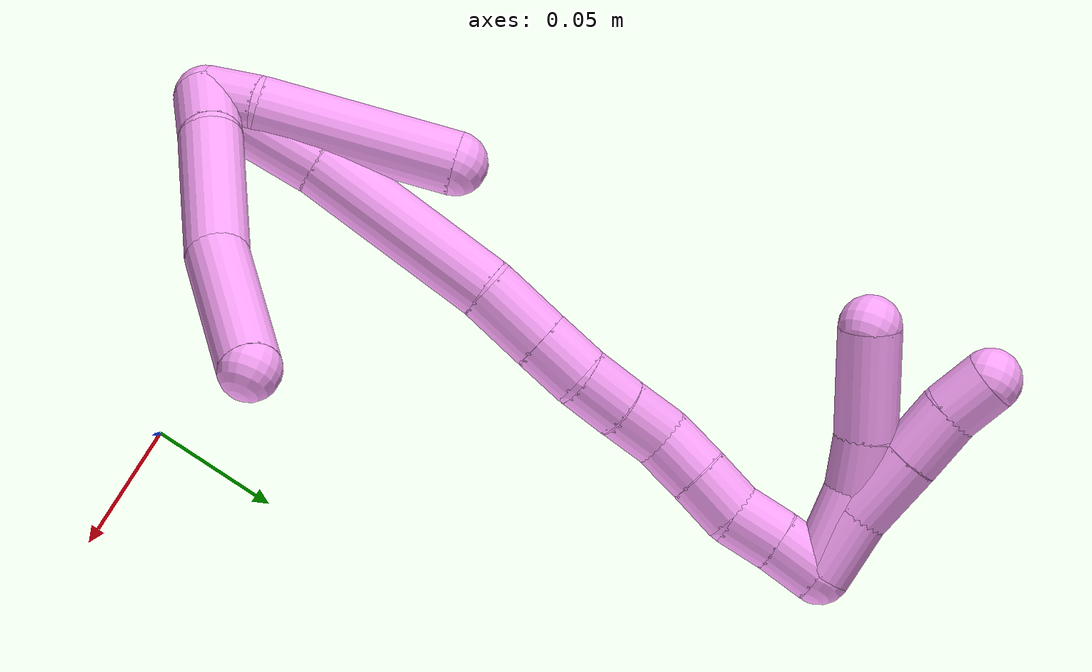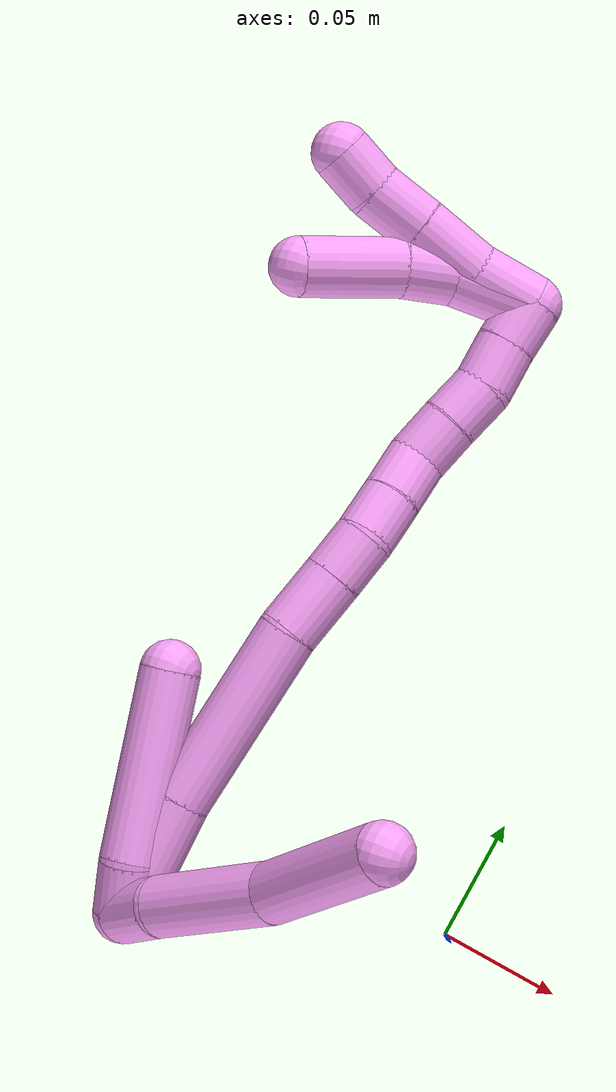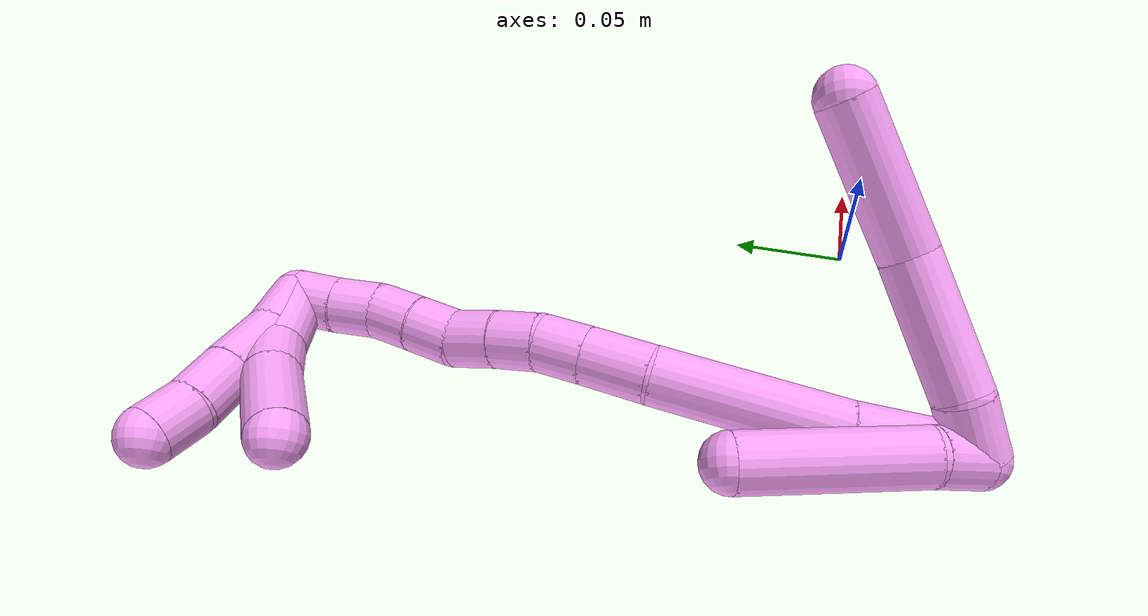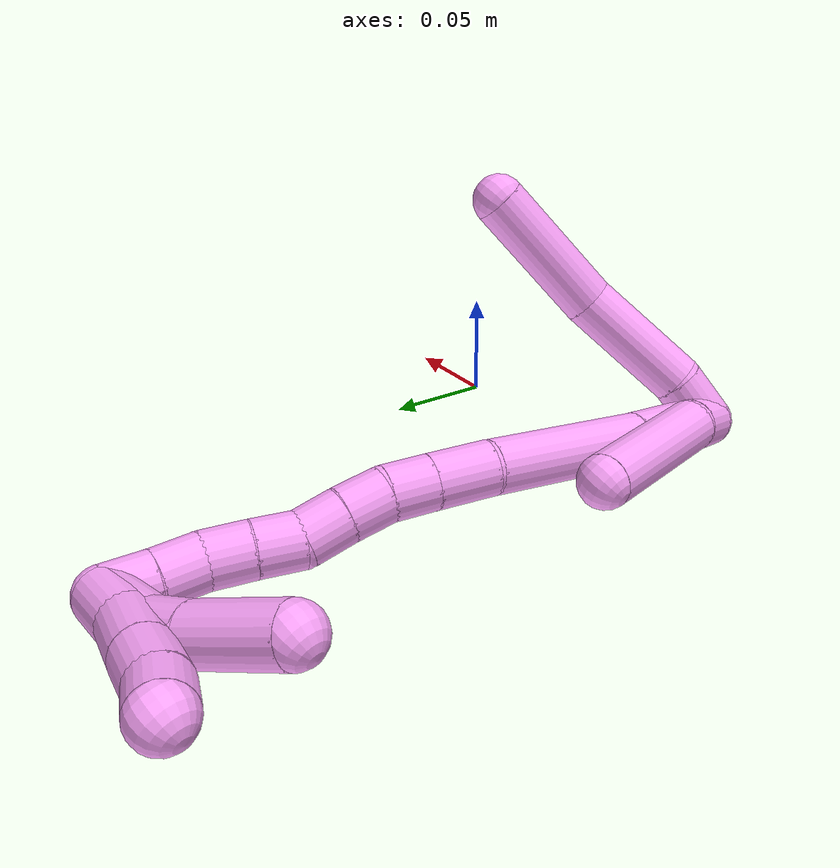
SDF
<sdf version="1.7">
 <world name="default">
  <model name="4">
   <static>0</static>
   <link name="4">
    <collision name="collision-cylinder-e_1_2_8">
     <pose>-0.007917 -1.7e-05 0.010125 0.001638 -0.663633 -0.000564</pose>
     <geometry><cylinder><radius>0.0125</radius><length>0.025707</length></cylinder></geometry>
     <surface>
      <friction><ode><mu>1.16</mu><mu2>1.16</mu2><slip1>0</slip1><slip2>0</slip2></ode></friction>
      <contact><ode><kp>1e+06</kp><kd>1</kd><max_vel>0</max_vel><min_depth>0.001</min_depth></ode></contact>
     </surface>
    </collision>
    <visual name="visual-cylinder-e_1_2_8">
     <pose>-0.007917 -1.7e-05 0.010125 0.001638 -0.663633 -0.000564</pose>
     <geometry><cylinder><radius>0.0125</radius><length>0.025707</length></cylinder></geometry>
     <material><ambient>1 0.65098 0.996078 1</ambient></material>
    </visual>
    <collision name="collision-cylinder-e_2_8_9">
     <pose>-0.029089 0.004193 0.045918 -0.163191 -0.471244 0.039261</pose>
     <geometry><cylinder><radius>0.0125</radius><length>0.058389</length></cylinder></geometry>
     <surface>
      <friction><ode><mu>1.16</mu><mu2>1.16</mu2><slip1>0</slip1><slip2>0</slip2></ode></friction>
      <contact><ode><kp>1e+06</kp><kd>1</kd><max_vel>0</max_vel><min_depth>0.001</min_depth></ode></contact>
     </surface>
    </collision>
    <visual name="visual-cylinder-e_2_8_9">
     <pose>-0.029089 0.004193 0.045918 -0.163191 -0.471244 0.039261</pose>
     <geometry><cylinder><radius>0.0125</radius><length>0.058389</length></cylinder></geometry>
     <material><ambient>1 0.65098 0.996078 1</ambient></material>
    </visual>
    <collision name="collision-cylinder-e_3_9_6">
     <pose>-0.063748 0.011972 0.096385 -0.142301 -0.707005 0.052586</pose>
     <geometry><cylinder><radius>0.0125</radius><length>0.065904</length></cylinder></geometry>
     <surface>
      <friction><ode><mu>1.16</mu><mu2>1.16</mu2><slip1>0</slip1><slip2>0</slip2></ode></friction>
      <contact><ode><kp>1e+06</kp><kd>1</kd><max_vel>0</max_vel><min_depth>0.001</min_depth></ode></contact>
     </surface>
    </collision>
    <visual name="visual-cylinder-e_3_9_6">
     <pose>-0.063748 0.011972 0.096385 -0.142301 -0.707005 0.052586</pose>
     <geometry><cylinder><radius>0.0125</radius><length>0.065904</length></cylinder></geometry>
     <material><ambient>1 0.65098 0.996078 1</ambient></material>
    </visual>
    <collision name="collision-cylinder-e_1_2_10">
     <pose>-0.008356 0.006869 -0.000714 -1.67433 -0.880086 0.962636</pose>
     <geometry><cylinder><radius>0.0125</radius><length>0.021681</length></cylinder></geometry>
     <surface>
      <friction><ode><mu>1.16</mu><mu2>1.16</mu2><slip1>0</slip1><slip2>0</slip2></ode></friction>
      <contact><ode><kp>1e+06</kp><kd>1</kd><max_vel>0</max_vel><min_depth>0.001</min_depth></ode></contact>
     </surface>
    </collision>
    <visual name="visual-cylinder-e_1_2_10">
     <pose>-0.008356 0.006869 -0.000714 -1.67433 -0.880086 0.962636</pose>
     <geometry><cylinder><radius>0.0125</radius><length>0.021681</length></cylinder></geometry>
     <material><ambient>1 0.65098 0.996078 1</ambient></material>
    </visual>
    <collision name="collision-cylinder-e_2_10_5">
     <pose>-0.040481 0.044679 -0.004775 -1.67858 -0.652257 0.720648</pose>
     <geometry><cylinder><radius>0.0125</radius><length>0.078319</length></cylinder></geometry>
     <surface>
      <friction><ode><mu>1.16</mu><mu2>1.16</mu2><slip1>0</slip1><slip2>0</slip2></ode></friction>
      <contact><ode><kp>1e+06</kp><kd>1</kd><max_vel>0</max_vel><min_depth>0.001</min_depth></ode></contact>
     </surface>
    </collision>
    <visual name="visual-cylinder-e_2_10_5">
     <pose>-0.040481 0.044679 -0.004775 -1.67858 -0.652257 0.720648</pose>
     <geometry><cylinder><radius>0.0125</radius><length>0.078319</length></cylinder></geometry>
     <material><ambient>1 0.65098 0.996078 1</ambient></material>
    </visual>
    <collision name="collision-cylinder-e_1_2_11">
     <pose>-0.014165 0.020598 0.004362 -1.36211 -0.592194 0.484733</pose>
     <geometry><cylinder><radius>0.0125</radius><length>0.050753</length></cylinder></geometry>
     <surface>
      <friction><ode><mu>1.16</mu><mu2>1.16</mu2><slip1>0</slip1><slip2>0</slip2></ode></friction>
      <contact><ode><kp>1e+06</kp><kd>1</kd><max_vel>0</max_vel><min_depth>0.001</min_depth></ode></contact>
     </surface>
    </collision>
    <visual name="visual-cylinder-e_1_2_11">
     <pose>-0.014165 0.020598 0.004362 -1.36211 -0.592194 0.484733</pose>
     <geometry><cylinder><radius>0.0125</radius><length>0.050753</length></cylinder></geometry>
     <material><ambient>1 0.65098 0.996078 1</ambient></material>
    </visual>
    <collision name="collision-cylinder-e_2_11_12">
     <pose>-0.048611 0.074156 0.019208 -1.26284 -0.530356 0.392099</pose>
     <geometry><cylinder><radius>0.0125</radius><length>0.080188</length></cylinder></geometry>
     <surface>
      <friction><ode><mu>1.16</mu><mu2>1.16</mu2><slip1>0</slip1><slip2>0</slip2></ode></friction>
      <contact><ode><kp>1e+06</kp><kd>1</kd><max_vel>0</max_vel><min_depth>0.001</min_depth></ode></contact>
     </surface>
    </collision>
    <visual name="visual-cylinder-e_2_11_12">
     <pose>-0.048611 0.074156 0.019208 -1.26284 -0.530356 0.392099</pose>
     <geometry><cylinder><radius>0.0125</radius><length>0.080188</length></cylinder></geometry>
     <material><ambient>1 0.65098 0.996078 1</ambient></material>
    </visual>
    <collision name="collision-cylinder-e_3_12_13">
     <pose>-0.074022 0.119498 0.034191 -1.22228 -0.371304 0.26167</pose>
     <geometry><cylinder><radius>0.0125</radius><length>0.028278</length></cylinder></geometry>
     <surface>
      <friction><ode><mu>1.16</mu><mu2>1.16</mu2><slip1>0</slip1><slip2>0</slip2></ode></friction>
      <contact><ode><kp>1e+06</kp><kd>1</kd><max_vel>0</max_vel><min_depth>0.001</min_depth></ode></contact>
     </surface>
    </collision>
    <visual name="visual-cylinder-e_3_12_13">
     <pose>-0.074022 0.119498 0.034191 -1.22228 -0.371304 0.26167</pose>
     <geometry><cylinder><radius>0.0125</radius><length>0.028278</length></cylinder></geometry>
     <material><ambient>1 0.65098 0.996078 1</ambient></material>
    </visual>
    <collision name="collision-cylinder-e_4_13_14">
     <pose>-0.082923 0.141029 0.041848 -1.2384 -0.371575 0.266328</pose>
     <geometry><cylinder><radius>0.0125</radius><length>0.020772</length></cylinder></geometry>
     <surface>
      <friction><ode><mu>1.16</mu><mu2>1.16</mu2><slip1>0</slip1><slip2>0</slip2></ode></friction>
      <contact><ode><kp>1e+06</kp><kd>1</kd><max_vel>0</max_vel><min_depth>0.001</min_depth></ode></contact>
     </surface>
    </collision>
    <visual name="visual-cylinder-e_4_13_14">
     <pose>-0.082923 0.141029 0.041848 -1.2384 -0.371575 0.266328</pose>
     <geometry><cylinder><radius>0.0125</radius><length>0.020772</length></cylinder></geometry>
     <material><ambient>1 0.65098 0.996078 1</ambient></material>
    </visual>
    <collision name="collision-cylinder-e_5_14_15">
     <pose>-0.089191 0.159747 0.046514 -1.41445 -0.252221 0.215886</pose>
     <geometry><cylinder><radius>0.0125</radius><length>0.020009</length></cylinder></geometry>
     <surface>
      <friction><ode><mu>1.16</mu><mu2>1.16</mu2><slip1>0</slip1><slip2>0</slip2></ode></friction>
      <contact><ode><kp>1e+06</kp><kd>1</kd><max_vel>0</max_vel><min_depth>0.001</min_depth></ode></contact>
     </surface>
    </collision>
    <visual name="visual-cylinder-e_5_14_15">
     <pose>-0.089191 0.159747 0.046514 -1.41445 -0.252221 0.215886</pose>
     <geometry><cylinder><radius>0.0125</radius><length>0.020009</length></cylinder></geometry>
     <material><ambient>1 0.65098 0.996078 1</ambient></material>
    </visual>
    <collision name="collision-cylinder-e_6_15_16">
     <pose>-0.093791 0.179032 0.049116 -1.45871 -0.211916 0.189544</pose>
     <geometry><cylinder><radius>0.0125</radius><length>0.02</length></cylinder></geometry>
     <surface>
      <friction><ode><mu>1.16</mu><mu2>1.16</mu2><slip1>0</slip1><slip2>0</slip2></ode></friction>
      <contact><ode><kp>1e+06</kp><kd>1</kd><max_vel>0</max_vel><min_depth>0.001</min_depth></ode></contact>
     </surface>
    </collision>
    <visual name="visual-cylinder-e_6_15_16">
     <pose>-0.093791 0.179032 0.049116 -1.45871 -0.211916 0.189544</pose>
     <geometry><cylinder><radius>0.0125</radius><length>0.02</length></cylinder></geometry>
     <material><ambient>1 0.65098 0.996078 1</ambient></material>
    </visual>
    <collision name="collision-cylinder-e_7_16_17">
     <pose>-0.099526 0.197303 0.053895 -1.16407 -0.371735 0.246236</pose>
     <geometry><cylinder><radius>0.0125</radius><length>0.02</length></cylinder></geometry>
     <surface>
      <friction><ode><mu>1.16</mu><mu2>1.16</mu2><slip1>0</slip1><slip2>0</slip2></ode></friction>
      <contact><ode><kp>1e+06</kp><kd>1</kd><max_vel>0</max_vel><min_depth>0.001</min_depth></ode></contact>
     </surface>
    </collision>
    <visual name="visual-cylinder-e_7_16_17">
     <pose>-0.099526 0.197303 0.053895 -1.16407 -0.371735 0.246236</pose>
     <geometry><cylinder><radius>0.0125</radius><length>0.02</length></cylinder></geometry>
     <material><ambient>1 0.65098 0.996078 1</ambient></material>
    </visual>
    <collision name="collision-cylinder-e_8_17_18">
     <pose>-0.106201 0.214637 0.061284 -1.17158 -0.309158 0.206036</pose>
     <geometry><cylinder><radius>0.0125</radius><length>0.02</length></cylinder></geometry>
     <surface>
      <friction><ode><mu>1.16</mu><mu2>1.16</mu2><slip1>0</slip1><slip2>0</slip2></ode></friction>
      <contact><ode><kp>1e+06</kp><kd>1</kd><max_vel>0</max_vel><min_depth>0.001</min_depth></ode></contact>
     </surface>
    </collision>
    <visual name="visual-cylinder-e_8_17_18">
     <pose>-0.106201 0.214637 0.061284 -1.17158 -0.309158 0.206036</pose>
     <geometry><cylinder><radius>0.0125</radius><length>0.02</length></cylinder></geometry>
     <material><ambient>1 0.65098 0.996078 1</ambient></material>
    </visual>
    <collision name="collision-cylinder-e_9_18_19">
     <pose>-0.113607 0.232294 0.066436 -1.409 -0.451542 0.385621</pose>
     <geometry><cylinder><radius>0.0125</radius><length>0.02</length></cylinder></geometry>
     <surface>
      <friction><ode><mu>1.16</mu><mu2>1.16</mu2><slip1>0</slip1><slip2>0</slip2></ode></friction>
      <contact><ode><kp>1e+06</kp><kd>1</kd><max_vel>0</max_vel><min_depth>0.001</min_depth></ode></contact>
     </surface>
    </collision>
    <visual name="visual-cylinder-e_9_18_19">
     <pose>-0.113607 0.232294 0.066436 -1.409 -0.451542 0.385621</pose>
     <geometry><cylinder><radius>0.0125</radius><length>0.02</length></cylinder></geometry>
     <material><ambient>1 0.65098 0.996078 1</ambient></material>
    </visual>
    <collision name="collision-cylinder-e_10_19_1">
     <pose>-0.122169 0.249988 0.070052 -1.3298 -0.433248 0.34171</pose>
     <geometry><cylinder><radius>0.0125</radius><length>0.02</length></cylinder></geometry>
     <surface>
      <friction><ode><mu>1.16</mu><mu2>1.16</mu2><slip1>0</slip1><slip2>0</slip2></ode></friction>
      <contact><ode><kp>1e+06</kp><kd>1</kd><max_vel>0</max_vel><min_depth>0.001</min_depth></ode></contact>
     </surface>
    </collision>
    <visual name="visual-cylinder-e_10_19_1">
     <pose>-0.122169 0.249988 0.070052 -1.3298 -0.433248 0.34171</pose>
     <geometry><cylinder><radius>0.0125</radius><length>0.02</length></cylinder></geometry>
     <material><ambient>1 0.65098 0.996078 1</ambient></material>
    </visual>
    <collision name="collision-cylinder-e_1_1_20">
     <pose>-0.133291 0.254964 0.057122 2.89262 -0.418271 -2.07615</pose>
     <geometry><cylinder><radius>0.0125</radius><length>0.03409</length></cylinder></geometry>
     <surface>
      <friction><ode><mu>1.16</mu><mu2>1.16</mu2><slip1>0</slip1><slip2>0</slip2></ode></friction>
      <contact><ode><kp>1e+06</kp><kd>1</kd><max_vel>0</max_vel><min_depth>0.001</min_depth></ode></contact>
     </surface>
    </collision>
    <visual name="visual-cylinder-e_1_1_20">
     <pose>-0.133291 0.254964 0.057122 2.89262 -0.418271 -2.07615</pose>
     <geometry><cylinder><radius>0.0125</radius><length>0.03409</length></cylinder></geometry>
     <material><ambient>1 0.65098 0.996078 1</ambient></material>
    </visual>
    <collision name="collision-cylinder-e_2_20_21">
     <pose>-0.144805 0.245362 0.033465 2.54908 -0.418528 -1.21575</pose>
     <geometry><cylinder><radius>0.0125</radius><length>0.022593</length></cylinder></geometry>
     <surface>
      <friction><ode><mu>1.16</mu><mu2>1.16</mu2><slip1>0</slip1><slip2>0</slip2></ode></friction>
      <contact><ode><kp>1e+06</kp><kd>1</kd><max_vel>0</max_vel><min_depth>0.001</min_depth></ode></contact>
     </surface>
    </collision>
    <visual name="visual-cylinder-e_2_20_21">
     <pose>-0.144805 0.245362 0.033465 2.54908 -0.418528 -1.21575</pose>
     <geometry><cylinder><radius>0.0125</radius><length>0.022593</length></cylinder></geometry>
     <material><ambient>1 0.65098 0.996078 1</ambient></material>
    </visual>
    <collision name="collision-cylinder-e_3_21_4">
     <pose>-0.156642 0.226277 0.009439 2.43051 -0.341125 -0.868619</pose>
     <geometry><cylinder><radius>0.0125</radius><length>0.043317</length></cylinder></geometry>
     <surface>
      <friction><ode><mu>1.16</mu><mu2>1.16</mu2><slip1>0</slip1><slip2>0</slip2></ode></friction>
      <contact><ode><kp>1e+06</kp><kd>1</kd><max_vel>0</max_vel><min_depth>0.001</min_depth></ode></contact>
     </surface>
    </collision>
    <visual name="visual-cylinder-e_3_21_4">
     <pose>-0.156642 0.226277 0.009439 2.43051 -0.341125 -0.868619</pose>
     <geometry><cylinder><radius>0.0125</radius><length>0.043317</length></cylinder></geometry>
     <material><ambient>1 0.65098 0.996078 1</ambient></material>
    </visual>
    <collision name="collision-cylinder-e_1_1_22">
     <pose>-0.133282 0.257258 0.060862 3.00641 -0.542878 -2.66439</pose>
     <geometry><cylinder><radius>0.0125</radius><length>0.02677</length></cylinder></geometry>
     <surface>
      <friction><ode><mu>1.16</mu><mu2>1.16</mu2><slip1>0</slip1><slip2>0</slip2></ode></friction>
      <contact><ode><kp>1e+06</kp><kd>1</kd><max_vel>0</max_vel><min_depth>0.001</min_depth></ode></contact>
     </surface>
    </collision>
    <visual name="visual-cylinder-e_1_1_22">
     <pose>-0.133282 0.257258 0.060862 3.00641 -0.542878 -2.66439</pose>
     <geometry><cylinder><radius>0.0125</radius><length>0.02677</length></cylinder></geometry>
     <material><ambient>1 0.65098 0.996078 1</ambient></material>
    </visual>
    <collision name="collision-cylinder-e_2_22_23">
     <pose>-0.149491 0.255672 0.038032 3.13798 -0.680833 -3.13138</pose>
     <geometry><cylinder><radius>0.0125</radius><length>0.029534</length></cylinder></geometry>
     <surface>
      <friction><ode><mu>1.16</mu><mu2>1.16</mu2><slip1>0</slip1><slip2>0</slip2></ode></friction>
      <contact><ode><kp>1e+06</kp><kd>1</kd><max_vel>0</max_vel><min_depth>0.001</min_depth></ode></contact>
     </surface>
    </collision>
    <visual name="visual-cylinder-e_2_22_23">
     <pose>-0.149491 0.255672 0.038032 3.13798 -0.680833 -3.13138</pose>
     <geometry><cylinder><radius>0.0125</radius><length>0.029534</length></cylinder></geometry>
     <material><ambient>1 0.65098 0.996078 1</ambient></material>
    </visual>
    <collision name="collision-cylinder-e_3_23_24">
     <pose>-0.16593 0.25545 0.017175 3.1224 -0.650703 -3.08471</pose>
     <geometry><cylinder><radius>0.0125</radius><length>0.023588</length></cylinder></geometry>
     <surface>
      <friction><ode><mu>1.16</mu><mu2>1.16</mu2><slip1>0</slip1><slip2>0</slip2></ode></friction>
      <contact><ode><kp>1e+06</kp><kd>1</kd><max_vel>0</max_vel><min_depth>0.001</min_depth></ode></contact>
     </surface>
    </collision>
    <visual name="visual-cylinder-e_3_23_24">
     <pose>-0.16593 0.25545 0.017175 3.1224 -0.650703 -3.08471</pose>
     <geometry><cylinder><radius>0.0125</radius><length>0.023588</length></cylinder></geometry>
     <material><ambient>1 0.65098 0.996078 1</ambient></material>
    </visual>
    <collision name="collision-cylinder-e_4_24_3">
     <pose>-0.180062 0.256477 0.000665 -2.97379 -0.768447 2.73143</pose>
     <geometry><cylinder><radius>0.0125</radius><length>0.020109</length></cylinder></geometry>
     <surface>
      <friction><ode><mu>1.16</mu><mu2>1.16</mu2><slip1>0</slip1><slip2>0</slip2></ode></friction>
      <contact><ode><kp>1e+06</kp><kd>1</kd><max_vel>0</max_vel><min_depth>0.001</min_depth></ode></contact>
     </surface>
    </collision>
    <visual name="visual-cylinder-e_4_24_3">
     <pose>-0.180062 0.256477 0.000665 -2.97379 -0.768447 2.73143</pose>
     <geometry><cylinder><radius>0.0125</radius><length>0.020109</length></cylinder></geometry>
     <material><ambient>1 0.65098 0.996078 1</ambient></material>
    </visual>
    <collision name="collision-sphere-3">
     <pose>-0.18705 0.257685 -0.006462 0 -0 0</pose>
     <geometry><sphere><radius>0.0125</radius></sphere></geometry>
     <surface>
      <friction><ode><mu>1.16</mu><mu2>1.16</mu2><slip1>0</slip1><slip2>0</slip2></ode></friction>
      <contact><ode><kp>1e+06</kp><kd>1</kd><max_vel>0</max_vel><min_depth>0.001</min_depth></ode></contact>
     </surface>
    </collision>
    <visual name="visual-sphere-3">
     <pose>-0.18705 0.257685 -0.006462 0 -0 0</pose>
     <geometry><sphere><radius>0.0125</radius></sphere></geometry>
     <material><ambient>1 0.65098 0.996078 1</ambient></material>
    </visual>
    <collision name="collision-sphere-24">
     <pose>-0.173074 0.25527 0.007793 0 -0 0</pose>
     <geometry><sphere><radius>0.0125</radius></sphere></geometry>
     <surface>
      <friction><ode><mu>1.16</mu><mu2>1.16</mu2><slip1>0</slip1><slip2>0</slip2></ode></friction>
      <contact><ode><kp>1e+06</kp><kd>1</kd><max_vel>0</max_vel><min_depth>0.001</min_depth></ode></contact>
     </surface>
    </collision>
    <visual name="visual-sphere-24">
     <pose>-0.173074 0.25527 0.007793 0 -0 0</pose>
     <geometry><sphere><radius>0.0125</radius></sphere></geometry>
     <material><ambient>1 0.65098 0.996078 1</ambient></material>
    </visual>
    <collision name="collision-sphere-23">
     <pose>-0.158786 0.25563 0.026557 0 -0 0</pose>
     <geometry><sphere><radius>0.0125</radius></sphere></geometry>
     <surface>
      <friction><ode><mu>1.16</mu><mu2>1.16</mu2><slip1>0</slip1><slip2>0</slip2></ode></friction>
      <contact><ode><kp>1e+06</kp><kd>1</kd><max_vel>0</max_vel><min_depth>0.001</min_depth></ode></contact>
     </surface>
    </collision>
    <visual name="visual-sphere-23">
     <pose>-0.158786 0.25563 0.026557 0 -0 0</pose>
     <geometry><sphere><radius>0.0125</radius></sphere></geometry>
     <material><ambient>1 0.65098 0.996078 1</ambient></material>
    </visual>
    <collision name="collision-sphere-22">
     <pose>-0.140196 0.255713 0.049506 0 -0 0</pose>
     <geometry><sphere><radius>0.0125</radius></sphere></geometry>
     <surface>
      <friction><ode><mu>1.16</mu><mu2>1.16</mu2><slip1>0</slip1><slip2>0</slip2></ode></friction>
      <contact><ode><kp>1e+06</kp><kd>1</kd><max_vel>0</max_vel><min_depth>0.001</min_depth></ode></contact>
     </surface>
    </collision>
    <visual name="visual-sphere-22">
     <pose>-0.140196 0.255713 0.049506 0 -0 0</pose>
     <geometry><sphere><radius>0.0125</radius></sphere></geometry>
     <material><ambient>1 0.65098 0.996078 1</ambient></material>
    </visual>
    <collision name="collision-sphere-4">
     <pose>-0.163888 0.212956 -0.006025 0 -0 0</pose>
     <geometry><sphere><radius>0.0125</radius></sphere></geometry>
     <surface>
      <friction><ode><mu>1.16</mu><mu2>1.16</mu2><slip1>0</slip1><slip2>0</slip2></ode></friction>
      <contact><ode><kp>1e+06</kp><kd>1</kd><max_vel>0</max_vel><min_depth>0.001</min_depth></ode></contact>
     </surface>
    </collision>
    <visual name="visual-sphere-4">
     <pose>-0.163888 0.212956 -0.006025 0 -0 0</pose>
     <geometry><sphere><radius>0.0125</radius></sphere></geometry>
     <material><ambient>1 0.65098 0.996078 1</ambient></material>
    </visual>
    <collision name="collision-sphere-21">
     <pose>-0.149396 0.239598 0.024903 0 -0 0</pose>
     <geometry><sphere><radius>0.0125</radius></sphere></geometry>
     <surface>
      <friction><ode><mu>1.16</mu><mu2>1.16</mu2><slip1>0</slip1><slip2>0</slip2></ode></friction>
      <contact><ode><kp>1e+06</kp><kd>1</kd><max_vel>0</max_vel><min_depth>0.001</min_depth></ode></contact>
     </surface>
    </collision>
    <visual name="visual-sphere-21">
     <pose>-0.149396 0.239598 0.024903 0 -0 0</pose>
     <geometry><sphere><radius>0.0125</radius></sphere></geometry>
     <material><ambient>1 0.65098 0.996078 1</ambient></material>
    </visual>
    <collision name="collision-sphere-20">
     <pose>-0.140214 0.251126 0.042027 0 -0 0</pose>
     <geometry><sphere><radius>0.0125</radius></sphere></geometry>
     <surface>
      <friction><ode><mu>1.16</mu><mu2>1.16</mu2><slip1>0</slip1><slip2>0</slip2></ode></friction>
      <contact><ode><kp>1e+06</kp><kd>1</kd><max_vel>0</max_vel><min_depth>0.001</min_depth></ode></contact>
     </surface>
    </collision>
    <visual name="visual-sphere-20">
     <pose>-0.140214 0.251126 0.042027 0 -0 0</pose>
     <geometry><sphere><radius>0.0125</radius></sphere></geometry>
     <material><ambient>1 0.65098 0.996078 1</ambient></material>
    </visual>
    <collision name="collision-sphere-5">
     <pose>-0.06425 0.075619 -0.008123 0 -0 0</pose>
     <geometry><sphere><radius>0.0125</radius></sphere></geometry>
     <surface>
      <friction><ode><mu>1.16</mu><mu2>1.16</mu2><slip1>0</slip1><slip2>0</slip2></ode></friction>
      <contact><ode><kp>1e+06</kp><kd>1</kd><max_vel>0</max_vel><min_depth>0.001</min_depth></ode></contact>
     </surface>
    </collision>
    <visual name="visual-sphere-5">
     <pose>-0.06425 0.075619 -0.008123 0 -0 0</pose>
     <geometry><sphere><radius>0.0125</radius></sphere></geometry>
     <material><ambient>1 0.65098 0.996078 1</ambient></material>
    </visual>
    <collision name="collision-sphere-10">
     <pose>-0.016711 0.013739 -0.001427 0 -0 0</pose>
     <geometry><sphere><radius>0.0125</radius></sphere></geometry>
     <surface>
      <friction><ode><mu>1.16</mu><mu2>1.16</mu2><slip1>0</slip1><slip2>0</slip2></ode></friction>
      <contact><ode><kp>1e+06</kp><kd>1</kd><max_vel>0</max_vel><min_depth>0.001</min_depth></ode></contact>
     </surface>
    </collision>
    <visual name="visual-sphere-10">
     <pose>-0.016711 0.013739 -0.001427 0 -0 0</pose>
     <geometry><sphere><radius>0.0125</radius></sphere></geometry>
     <material><ambient>1 0.65098 0.996078 1</ambient></material>
    </visual>
    <collision name="collision-sphere-6">
     <pose>-0.085152 0.015526 0.121186 0 -0 0</pose>
     <geometry><sphere><radius>0.0125</radius></sphere></geometry>
     <surface>
      <friction><ode><mu>1.16</mu><mu2>1.16</mu2><slip1>0</slip1><slip2>0</slip2></ode></friction>
      <contact><ode><kp>1e+06</kp><kd>1</kd><max_vel>0</max_vel><min_depth>0.001</min_depth></ode></contact>
     </surface>
    </collision>
    <visual name="visual-sphere-6">
     <pose>-0.085152 0.015526 0.121186 0 -0 0</pose>
     <geometry><sphere><radius>0.0125</radius></sphere></geometry>
     <material><ambient>1 0.65098 0.996078 1</ambient></material>
    </visual>
    <collision name="collision-sphere-9">
     <pose>-0.042343 0.008419 0.071584 0 -0 0</pose>
     <geometry><sphere><radius>0.0125</radius></sphere></geometry>
     <surface>
      <friction><ode><mu>1.16</mu><mu2>1.16</mu2><slip1>0</slip1><slip2>0</slip2></ode></friction>
      <contact><ode><kp>1e+06</kp><kd>1</kd><max_vel>0</max_vel><min_depth>0.001</min_depth></ode></contact>
     </surface>
    </collision>
    <visual name="visual-sphere-9">
     <pose>-0.042343 0.008419 0.071584 0 -0 0</pose>
     <geometry><sphere><radius>0.0125</radius></sphere></geometry>
     <material><ambient>1 0.65098 0.996078 1</ambient></material>
    </visual>
    <collision name="collision-sphere-2">
     <geometry><sphere><radius>0.0125</radius></sphere></geometry>
     <surface>
      <friction><ode><mu>1.16</mu><mu2>1.16</mu2><slip1>0</slip1><slip2>0</slip2></ode></friction>
      <contact><ode><kp>1e+06</kp><kd>1</kd><max_vel>0</max_vel><min_depth>0.001</min_depth></ode></contact>
     </surface>
    </collision>
    <visual name="visual-sphere-2">
     <geometry><sphere><radius>0.0125</radius></sphere></geometry>
     <material><ambient>1 0.65098 0.996078 1</ambient></material>
    </visual>
    <collision name="collision-sphere-19">
     <pose>-0.117971 0.241175 0.067885 0 -0 0</pose>
     <geometry><sphere><radius>0.0125</radius></sphere></geometry>
     <surface>
      <friction><ode><mu>1.16</mu><mu2>1.16</mu2><slip1>0</slip1><slip2>0</slip2></ode></friction>
      <contact><ode><kp>1e+06</kp><kd>1</kd><max_vel>0</max_vel><min_depth>0.001</min_depth></ode></contact>
     </surface>
    </collision>
    <visual name="visual-sphere-19">
     <pose>-0.117971 0.241175 0.067885 0 -0 0</pose>
     <geometry><sphere><radius>0.0125</radius></sphere></geometry>
     <material><ambient>1 0.65098 0.996078 1</ambient></material>
    </visual>
    <collision name="collision-sphere-8">
     <pose>-0.015835 -3.3e-05 0.020251 0 -0 0</pose>
     <geometry><sphere><radius>0.0125</radius></sphere></geometry>
     <surface>
      <friction><ode><mu>1.16</mu><mu2>1.16</mu2><slip1>0</slip1><slip2>0</slip2></ode></friction>
      <contact><ode><kp>1e+06</kp><kd>1</kd><max_vel>0</max_vel><min_depth>0.001</min_depth></ode></contact>
     </surface>
    </collision>
    <visual name="visual-sphere-8">
     <pose>-0.015835 -3.3e-05 0.020251 0 -0 0</pose>
     <geometry><sphere><radius>0.0125</radius></sphere></geometry>
     <material><ambient>1 0.65098 0.996078 1</ambient></material>
    </visual>
    <collision name="collision-sphere-11">
     <pose>-0.028329 0.041197 0.008724 0 -0 0</pose>
     <geometry><sphere><radius>0.0125</radius></sphere></geometry>
     <surface>
      <friction><ode><mu>1.16</mu><mu2>1.16</mu2><slip1>0</slip1><slip2>0</slip2></ode></friction>
      <contact><ode><kp>1e+06</kp><kd>1</kd><max_vel>0</max_vel><min_depth>0.001</min_depth></ode></contact>
     </surface>
    </collision>
    <visual name="visual-sphere-11">
     <pose>-0.028329 0.041197 0.008724 0 -0 0</pose>
     <geometry><sphere><radius>0.0125</radius></sphere></geometry>
     <material><ambient>1 0.65098 0.996078 1</ambient></material>
    </visual>
    <collision name="collision-sphere-12">
     <pose>-0.068892 0.107115 0.029691 0 -0 0</pose>
     <geometry><sphere><radius>0.0125</radius></sphere></geometry>
     <surface>
      <friction><ode><mu>1.16</mu><mu2>1.16</mu2><slip1>0</slip1><slip2>0</slip2></ode></friction>
      <contact><ode><kp>1e+06</kp><kd>1</kd><max_vel>0</max_vel><min_depth>0.001</min_depth></ode></contact>
     </surface>
    </collision>
    <visual name="visual-sphere-12">
     <pose>-0.068892 0.107115 0.029691 0 -0 0</pose>
     <geometry><sphere><radius>0.0125</radius></sphere></geometry>
     <material><ambient>1 0.65098 0.996078 1</ambient></material>
    </visual>
    <collision name="collision-sphere-13">
     <pose>-0.079152 0.131882 0.03869 0 -0 0</pose>
     <geometry><sphere><radius>0.0125</radius></sphere></geometry>
     <surface>
      <friction><ode><mu>1.16</mu><mu2>1.16</mu2><slip1>0</slip1><slip2>0</slip2></ode></friction>
      <contact><ode><kp>1e+06</kp><kd>1</kd><max_vel>0</max_vel><min_depth>0.001</min_depth></ode></contact>
     </surface>
    </collision>
    <visual name="visual-sphere-13">
     <pose>-0.079152 0.131882 0.03869 0 -0 0</pose>
     <geometry><sphere><radius>0.0125</radius></sphere></geometry>
     <material><ambient>1 0.65098 0.996078 1</ambient></material>
    </visual>
    <collision name="collision-sphere-14">
     <pose>-0.086694 0.150177 0.045006 0 -0 0</pose>
     <geometry><sphere><radius>0.0125</radius></sphere></geometry>
     <surface>
      <friction><ode><mu>1.16</mu><mu2>1.16</mu2><slip1>0</slip1><slip2>0</slip2></ode></friction>
      <contact><ode><kp>1e+06</kp><kd>1</kd><max_vel>0</max_vel><min_depth>0.001</min_depth></ode></contact>
     </surface>
    </collision>
    <visual name="visual-sphere-14">
     <pose>-0.086694 0.150177 0.045006 0 -0 0</pose>
     <geometry><sphere><radius>0.0125</radius></sphere></geometry>
     <material><ambient>1 0.65098 0.996078 1</ambient></material>
    </visual>
    <collision name="collision-sphere-15">
     <pose>-0.091687 0.169317 0.048022 0 -0 0</pose>
     <geometry><sphere><radius>0.0125</radius></sphere></geometry>
     <surface>
      <friction><ode><mu>1.16</mu><mu2>1.16</mu2><slip1>0</slip1><slip2>0</slip2></ode></friction>
      <contact><ode><kp>1e+06</kp><kd>1</kd><max_vel>0</max_vel><min_depth>0.001</min_depth></ode></contact>
     </surface>
    </collision>
    <visual name="visual-sphere-15">
     <pose>-0.091687 0.169317 0.048022 0 -0 0</pose>
     <geometry><sphere><radius>0.0125</radius></sphere></geometry>
     <material><ambient>1 0.65098 0.996078 1</ambient></material>
    </visual>
    <collision name="collision-sphere-16">
     <pose>-0.095894 0.188747 0.050209 0 -0 0</pose>
     <geometry><sphere><radius>0.0125</radius></sphere></geometry>
     <surface>
      <friction><ode><mu>1.16</mu><mu2>1.16</mu2><slip1>0</slip1><slip2>0</slip2></ode></friction>
      <contact><ode><kp>1e+06</kp><kd>1</kd><max_vel>0</max_vel><min_depth>0.001</min_depth></ode></contact>
     </surface>
    </collision>
    <visual name="visual-sphere-16">
     <pose>-0.095894 0.188747 0.050209 0 -0 0</pose>
     <geometry><sphere><radius>0.0125</radius></sphere></geometry>
     <material><ambient>1 0.65098 0.996078 1</ambient></material>
    </visual>
    <collision name="collision-sphere-17">
     <pose>-0.103159 0.20586 0.057581 0 -0 0</pose>
     <geometry><sphere><radius>0.0125</radius></sphere></geometry>
     <surface>
      <friction><ode><mu>1.16</mu><mu2>1.16</mu2><slip1>0</slip1><slip2>0</slip2></ode></friction>
      <contact><ode><kp>1e+06</kp><kd>1</kd><max_vel>0</max_vel><min_depth>0.001</min_depth></ode></contact>
     </surface>
    </collision>
    <visual name="visual-sphere-17">
     <pose>-0.103159 0.20586 0.057581 0 -0 0</pose>
     <geometry><sphere><radius>0.0125</radius></sphere></geometry>
     <material><ambient>1 0.65098 0.996078 1</ambient></material>
    </visual>
    <collision name="collision-sphere-18">
     <pose>-0.109244 0.223414 0.064987 0 -0 0</pose>
     <geometry><sphere><radius>0.0125</radius></sphere></geometry>
     <surface>
      <friction><ode><mu>1.16</mu><mu2>1.16</mu2><slip1>0</slip1><slip2>0</slip2></ode></friction>
      <contact><ode><kp>1e+06</kp><kd>1</kd><max_vel>0</max_vel><min_depth>0.001</min_depth></ode></contact>
     </surface>
    </collision>
    <visual name="visual-sphere-18">
     <pose>-0.109244 0.223414 0.064987 0 -0 0</pose>
     <geometry><sphere><radius>0.0125</radius></sphere></geometry>
     <material><ambient>1 0.65098 0.996078 1</ambient></material>
    </visual>
    <collision name="collision-sphere-1">
     <pose>-0.126367 0.258802 0.072218 0 -0 0</pose>
     <geometry><sphere><radius>0.0125</radius></sphere></geometry>
     <surface>
      <friction><ode><mu>1.16</mu><mu2>1.16</mu2><slip1>0</slip1><slip2>0</slip2></ode></friction>
      <contact><ode><kp>1e+06</kp><kd>1</kd><max_vel>0</max_vel><min_depth>0.001</min_depth></ode></contact>
     </surface>
    </collision>
    <visual name="visual-sphere-1">
     <pose>-0.126367 0.258802 0.072218 0 -0 0</pose>
     <geometry><sphere><radius>0.0125</radius></sphere></geometry>
     <material><ambient>1 0.65098 0.996078 1</ambient></material>
    </visual>
    <inertial>
     <pose>-0.080662 0.123068 0.034309 0 -0 0</pose>
     <mass>0.75</mass>
     <inertia><ixx>0.000127</ixx><ixy>0</ixy><ixz>0</ixz><iyy>0.000163</iyy><iyz>0</iyz><izz>1e-05</izz></inertia>
    </inertial>
   </link>
   <pose>-0.117895 -0.05488 0.012715 -0.909925 0.893463 -0.83945</pose>
  </model>
 </world>
</sdf>
